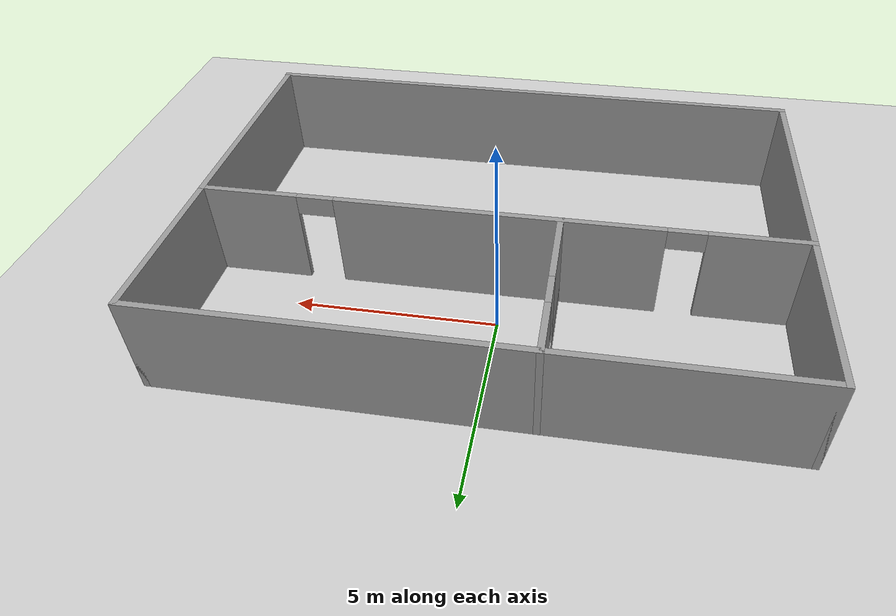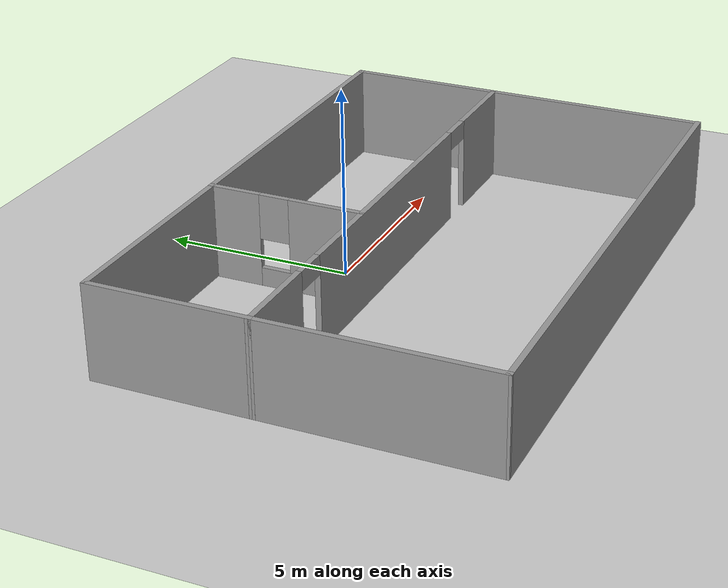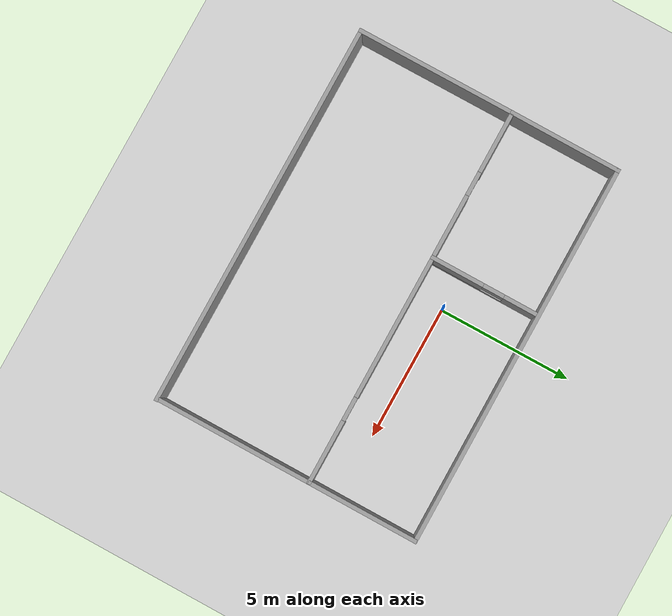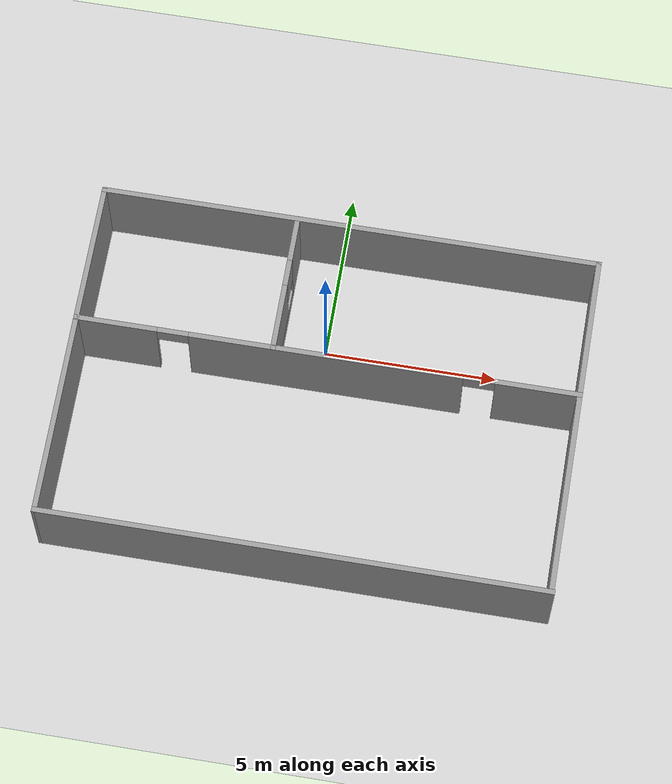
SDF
<sdf version="1.7">
 <world name="default">
  <light name="sun" type="directional">
   <pose>0 0 10 0 -0 0</pose>
   <diffuse>0.8 0.8 0.8 1</diffuse>
   <specular>0.2 0.2 0.2 1</specular>
   <attenuation>
    <range>1000</range>
    <constant>0.9</constant>
    <linear>0.01</linear>
    <quadratic>0.001</quadratic>
   </attenuation>
   <direction>-0.5 0.1 -0.9</direction>
   <spot><inner_angle>0</inner_angle><outer_angle>0</outer_angle><falloff>0</falloff></spot>
  </light>
  <model name="ground_plane">
   <static>1</static>
   <link name="link">
    <collision name="collision">
     <geometry><plane><normal>0 0 1</normal><size>100 100</size></plane></geometry>
     <surface>
      <contact><collide_bitmask>65535</collide_bitmask></contact>
      <friction><ode><mu>100</mu><mu2>50</mu2></ode></friction>
     </surface>
    </collision>
    <visual name="visual">
     <cast_shadows>0</cast_shadows>
     <geometry><plane><normal>0 0 1</normal><size>100 100</size></plane></geometry>
     <material>
      <script><uri>file://media/materials/scripts/gazebo.material</uri><name>Gazebo/Grey</name></script>
     </material>
    </visual>
   </link>
  </model>
  <gravity>0 0 -9.8</gravity>
  <magnetic_field>6e-06 2.3e-05 -4.2e-05</magnetic_field>
  <atmosphere type="adiabatic"/>
  <physics type="ode">
   <max_step_size>0.001</max_step_size>
   <real_time_factor>1</real_time_factor>
   <real_time_update_rate>1000</real_time_update_rate>
  </physics>
  <scene><ambient>0.4 0.4 0.4 1</ambient><background>0.7 0.7 0.7 1</background><shadows>1</shadows></scene>
  <spherical_coordinates>
   <surface_model>EARTH_WGS84</surface_model>
   <latitude_deg>0</latitude_deg>
   <longitude_deg>0</longitude_deg>
   <elevation>0</elevation>
   <heading_deg>0</heading_deg>
  </spherical_coordinates>
  <audio><device>default</device></audio>
  <model name="Untitled">
   <pose>0.228866 -2.0204 0 0 -0 0</pose>
   <link name="Wall_11">
    <collision name="Wall_11_Collision">
     <geometry><box><size>14.5 0.15 2.5</size></box></geometry>
     <pose>0 0 1.25 0 -0 0</pose>
    </collision>
    <visual name="Wall_11_Visual">
     <pose>0 0 1.25 0 -0 0</pose>
     <geometry><box><size>14.5 0.15 2.5</size></box></geometry>
     <material>
      <script><uri>file://media/materials/scripts/gazebo.material</uri><name>Gazebo/Grey</name></script>
      <ambient>1 1 1 1</ambient>
     </material>
     <meta><layer>0</layer></meta>
    </visual>
    <pose>0.01203 -4.99611 0 0 -0 0</pose>
   </link>
   <link name="Wall_16">
    <pose>-1.53964 2.94642 0 0 -0 -1.5708</pose>
    <visual name="Wall_16_Visual_0">
     <pose>-1.4177 0 1.25 0 -0 0</pose>
     <geometry><box><size>1.41459 0.15 2.5</size></box></geometry>
     <material>
      <script><uri>file://media/materials/scripts/gazebo.material</uri><name>Gazebo/Grey</name></script>
      <ambient>1 1 1 1</ambient>
     </material>
     <meta><layer>0</layer></meta>
    </visual>
    <collision name="Wall_16_Collision_0">
     <geometry><box><size>1.41459 0.15 2.5</size></box></geometry>
     <pose>-1.4177 0 1.25 0 -0 0</pose>
    </collision>
    <visual name="Wall_16_Visual_1">
     <pose>0.707295 0 0.25 0 -0 0</pose>
     <geometry><box><size>2.83541 0.15 0.5</size></box></geometry>
     <material>
      <script><uri>file://media/materials/scripts/gazebo.material</uri><name>Gazebo/Grey</name></script>
      <ambient>1 1 1 1</ambient>
     </material>
     <meta><layer>0</layer></meta>
    </visual>
    <collision name="Wall_16_Collision_1">
     <geometry><box><size>2.83541 0.15 0.5</size></box></geometry>
     <pose>0.707295 0 0.25 0 -0 0</pose>
    </collision>
    <visual name="Wall_16_Visual_2">
     <pose>1.10729 0 1.5 0 -0 0</pose>
     <geometry><box><size>2.03541 0.15 2</size></box></geometry>
     <material>
      <script><uri>file://media/materials/scripts/gazebo.material</uri><name>Gazebo/Grey</name></script>
      <ambient>1 1 1 1</ambient>
     </material>
     <meta><layer>0</layer></meta>
    </visual>
    <collision name="Wall_16_Collision_2">
     <geometry><box><size>2.03541 0.15 2</size></box></geometry>
     <pose>1.10729 0 1.5 0 -0 0</pose>
    </collision>
    <visual name="Wall_16_Visual_3">
     <pose>-0.31041 0 1.9 0 -0 0</pose>
     <geometry><box><size>0.8 0.15 1.2</size></box></geometry>
     <material>
      <script><uri>file://media/materials/scripts/gazebo.material</uri><name>Gazebo/Grey</name></script>
      <ambient>1 1 1 1</ambient>
     </material>
     <meta><layer>0</layer></meta>
    </visual>
    <collision name="Wall_16_Collision_3">
     <geometry><box><size>0.8 0.15 1.2</size></box></geometry>
     <pose>-0.31041 0 1.9 0 -0 0</pose>
    </collision>
   </link>
   <link name="Wall_2">
    <collision name="Wall_2_Collision">
     <geometry><box><size>5.91966 0.15 2.5</size></box></geometry>
     <pose>0 0 1.25 0 -0 0</pose>
    </collision>
    <visual name="Wall_2_Visual">
     <pose>0 0 1.25 0 -0 0</pose>
     <geometry><box><size>5.91966 0.15 2.5</size></box></geometry>
     <material>
      <script><uri>file://media/materials/scripts/gazebo.material</uri><name>Gazebo/Grey</name></script>
      <ambient>1 1 1 1</ambient>
     </material>
     <meta><layer>0</layer></meta>
    </visual>
    <pose>7.16327 -1.9902 0 0 -0 1.5708</pose>
   </link>
   <link name="Wall_3">
    <pose>-0.011728 0.894343 0 0 -0 3.14159</pose>
    <visual name="Wall_3_Visual_0">
     <pose>-6.01907 0 1.25 0 -0 0</pose>
     <geometry><box><size>2.46186 0.15 2.5</size></box></geometry>
     <material>
      <script><uri>file://media/materials/scripts/gazebo.material</uri><name>Gazebo/Grey</name></script>
      <ambient>1 1 1 1</ambient>
     </material>
     <meta><layer>0</layer></meta>
    </visual>
    <collision name="Wall_3_Collision_0">
     <geometry><box><size>2.46186 0.15 2.5</size></box></geometry>
     <pose>-6.01907 0 1.25 0 -0 0</pose>
    </collision>
    <visual name="Wall_3_Visual_1">
     <pose>0.03106 0 1.25 0 -0 0</pose>
     <geometry><box><size>7.8384 0.15 2.5</size></box></geometry>
     <material>
      <script><uri>file://media/materials/scripts/gazebo.material</uri><name>Gazebo/Grey</name></script>
      <ambient>1 1 1 1</ambient>
     </material>
     <meta><layer>0</layer></meta>
    </visual>
    <collision name="Wall_3_Collision_1">
     <geometry><box><size>7.8384 0.15 2.5</size></box></geometry>
     <pose>0.03106 0 1.25 0 -0 0</pose>
    </collision>
    <visual name="Wall_3_Visual_2">
     <pose>6.05013 0 1.25 0 -0 0</pose>
     <geometry><box><size>2.39974 0.15 2.5</size></box></geometry>
     <material>
      <script><uri>file://media/materials/scripts/gazebo.material</uri><name>Gazebo/Grey</name></script>
      <ambient>1 1 1 1</ambient>
     </material>
     <meta><layer>0</layer></meta>
    </visual>
    <collision name="Wall_3_Collision_2">
     <geometry><box><size>2.39974 0.15 2.5</size></box></geometry>
     <pose>6.05013 0 1.25 0 -0 0</pose>
    </collision>
    <visual name="Wall_3_Visual_3">
     <pose>-4.33814 0 2.25 0 -0 0</pose>
     <geometry><box><size>0.9 0.15 0.5</size></box></geometry>
     <material>
      <script><uri>file://media/materials/scripts/gazebo.material</uri><name>Gazebo/Grey</name></script>
      <ambient>1 1 1 1</ambient>
     </material>
     <meta><layer>0</layer></meta>
    </visual>
    <collision name="Wall_3_Collision_3">
     <geometry><box><size>0.9 0.15 0.5</size></box></geometry>
     <pose>-4.33814 0 2.25 0 -0 0</pose>
    </collision>
    <visual name="Wall_3_Visual_4">
     <pose>4.40026 0 2.25 0 -0 0</pose>
     <geometry><box><size>0.9 0.15 0.5</size></box></geometry>
     <material>
      <script><uri>file://media/materials/scripts/gazebo.material</uri><name>Gazebo/Grey</name></script>
      <ambient>1 1 1 1</ambient>
     </material>
     <meta><layer>0</layer></meta>
    </visual>
    <collision name="Wall_3_Collision_4">
     <geometry><box><size>0.9 0.15 0.5</size></box></geometry>
     <pose>4.40026 0 2.25 0 -0 0</pose>
    </collision>
   </link>
   <link name="Wall_6">
    <collision name="Wall_6_Collision">
     <geometry><box><size>6.0405 0.15 2.5</size></box></geometry>
     <pose>0 0 1.25 0 -0 0</pose>
    </collision>
    <visual name="Wall_6_Visual">
     <pose>0 0 1.25 0 -0 0</pose>
     <geometry><box><size>6.0405 0.15 2.5</size></box></geometry>
     <material>
      <script><uri>file://media/materials/scripts/gazebo.material</uri><name>Gazebo/Grey</name></script>
      <ambient>1 1 1 1</ambient>
     </material>
     <meta><layer>0</layer></meta>
    </visual>
    <pose>-7.17485 -2.05089 0 0 -0 1.57483</pose>
   </link>
   <link name="Wall_7">
    <collision name="Wall_7_Collision">
     <geometry><box><size>4.25 0.15 2.5</size></box></geometry>
     <pose>0 0 1.25 0 -0 0</pose>
    </collision>
    <visual name="Wall_7_Visual">
     <pose>0 0 1.25 0 -0 0</pose>
     <geometry><box><size>4.25 0.15 2.5</size></box></geometry>
     <material>
      <script><uri>file://media/materials/scripts/gazebo.material</uri><name>Gazebo/Grey</name></script>
      <ambient>1 1 1 1</ambient>
     </material>
     <meta><layer>0</layer></meta>
    </visual>
    <pose>-7.18673 2.94434 0 0 -0 1.5708</pose>
   </link>
   <link name="Wall_8">
    <collision name="Wall_8_Collision">
     <geometry><box><size>14.5 0.15 2.5</size></box></geometry>
     <pose>0 0 1.25 0 -0 0</pose>
    </collision>
    <visual name="Wall_8_Visual">
     <pose>0 0 1.25 0 -0 0</pose>
     <geometry><box><size>14.5 0.15 2.5</size></box></geometry>
     <material>
      <script><uri>file://media/materials/scripts/gazebo.material</uri><name>Gazebo/Grey</name></script>
      <ambient>1 1 1 1</ambient>
     </material>
     <meta><layer>0</layer></meta>
    </visual>
    <pose>-0.011728 4.99434 0 0 -0 0</pose>
   </link>
   <link name="Wall_9">
    <collision name="Wall_9_Collision">
     <geometry><box><size>4.25 0.15 2.5</size></box></geometry>
     <pose>0 0 1.25 0 -0 0</pose>
    </collision>
    <visual name="Wall_9_Visual">
     <pose>0 0 1.25 0 -0 0</pose>
     <geometry><box><size>4.25 0.15 2.5</size></box></geometry>
     <material>
      <script><uri>file://media/materials/scripts/gazebo.material</uri><name>Gazebo/Grey</name></script>
      <ambient>1 1 1 1</ambient>
     </material>
     <meta><layer>0</layer></meta>
    </visual>
    <pose>7.16327 2.94434 0 0 -0 -1.5708</pose>
   </link>
   <static>1</static>
  </model>
 </world>
</sdf>
